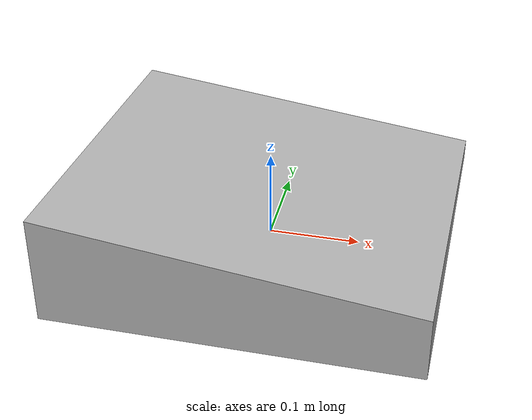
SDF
<?xml version="1.0" ?>
<sdf version="1.4">
  <model name="diag_Y_positive_10_lifted">
    <link name="link">
      <pose>0 0 0 0 0 0</pose>
      <collision name="collision">
        <geometry>
          <mesh>
            <uri>model://diag_Y_positive_10_lifted/meshes/diag_Y_positive_10_degree_slope_lifted.stl</uri>
            <scale>0.00999 0.00999 0.00999</scale>
          </mesh>
        </geometry>
      </collision>
      <visual name="visual">
        <geometry>
          <mesh>
            <uri>model://diag_Y_positive_10_lifted/meshes/diag_Y_positive_10_degree_slope_lifted.stl</uri>
            <scale>0.00999 0.00999 0.00999</scale>
          </mesh>
        </geometry>
      </visual>
    </link>
  </model>
</sdf>
